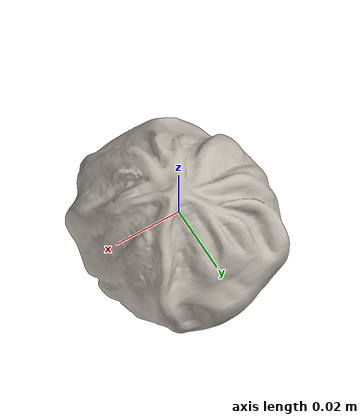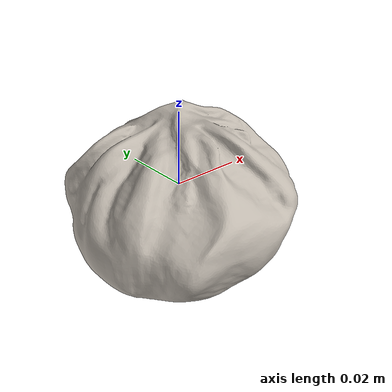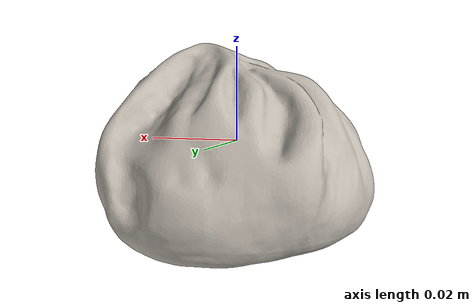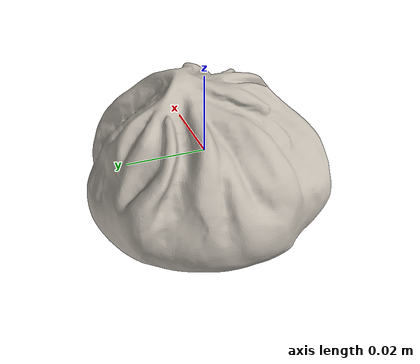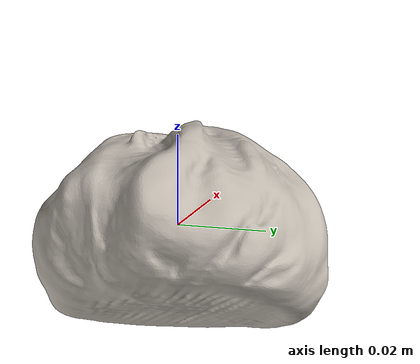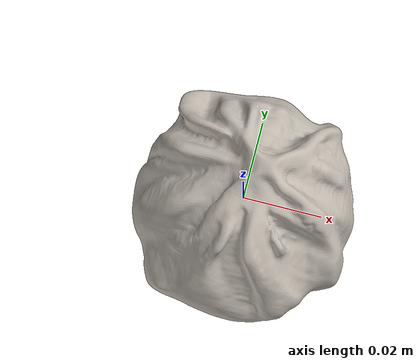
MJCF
<?xml version='1.0' encoding='utf-8'?>
<mujoco model="dumpling_11">
  <asset>
    <texture file="ceramic.png" name="tex-dumpling_11" type="2d" />
    <material name="dumpling_11" reflectance="0.5" texrepeat="1 1" texture="tex-dumpling_11" texuniform="false" />
    <mesh file="visual/model_normalized_0.obj" name="model_normalized_0_vis" scale="0.06000000000000002 0.06000000000000002 0.06000000000000002" refquat="1.0 0.0 0.0 0.0" />
    <mesh file="collision/model_normalized_collision_13.obj" name="model_normalized_collision_13._coll" scale="0.06000000000000002 0.06000000000000002 0.06000000000000002" refquat="1.0 0.0 0.0 0.0" />
    <mesh file="collision/model_normalized_collision_15.obj" name="model_normalized_collision_15._coll" scale="0.06000000000000002 0.06000000000000002 0.06000000000000002" refquat="1.0 0.0 0.0 0.0" />
    <mesh file="collision/model_normalized_collision_10.obj" name="model_normalized_collision_10._coll" scale="0.06000000000000002 0.06000000000000002 0.06000000000000002" refquat="1.0 0.0 0.0 0.0" />
    <mesh file="collision/model_normalized_collision_26.obj" name="model_normalized_collision_26._coll" scale="0.06000000000000002 0.06000000000000002 0.06000000000000002" refquat="1.0 0.0 0.0 0.0" />
    <mesh file="collision/model_normalized_collision_25.obj" name="model_normalized_collision_25._coll" scale="0.06000000000000002 0.06000000000000002 0.06000000000000002" refquat="1.0 0.0 0.0 0.0" />
    <mesh file="collision/model_normalized_collision_5.obj" name="model_normalized_collision_5._coll" scale="0.06000000000000002 0.06000000000000002 0.06000000000000002" refquat="1.0 0.0 0.0 0.0" />
    <mesh file="collision/model_normalized_collision_31.obj" name="model_normalized_collision_31._coll" scale="0.06000000000000002 0.06000000000000002 0.06000000000000002" refquat="1.0 0.0 0.0 0.0" />
    <mesh file="collision/model_normalized_collision_3.obj" name="model_normalized_collision_3._coll" scale="0.06000000000000002 0.06000000000000002 0.06000000000000002" refquat="1.0 0.0 0.0 0.0" />
    <mesh file="collision/model_normalized_collision_14.obj" name="model_normalized_collision_14._coll" scale="0.06000000000000002 0.06000000000000002 0.06000000000000002" refquat="1.0 0.0 0.0 0.0" />
    <mesh file="collision/model_normalized_collision_28.obj" name="model_normalized_collision_28._coll" scale="0.06000000000000002 0.06000000000000002 0.06000000000000002" refquat="1.0 0.0 0.0 0.0" />
    <mesh file="collision/model_normalized_collision_11.obj" name="model_normalized_collision_11._coll" scale="0.06000000000000002 0.06000000000000002 0.06000000000000002" refquat="1.0 0.0 0.0 0.0" />
    <mesh file="collision/model_normalized_collision_29.obj" name="model_normalized_collision_29._coll" scale="0.06000000000000002 0.06000000000000002 0.06000000000000002" refquat="1.0 0.0 0.0 0.0" />
    <mesh file="collision/model_normalized_collision_24.obj" name="model_normalized_collision_24._coll" scale="0.06000000000000002 0.06000000000000002 0.06000000000000002" refquat="1.0 0.0 0.0 0.0" />
    <mesh file="collision/model_normalized_collision_1.obj" name="model_normalized_collision_1._coll" scale="0.06000000000000002 0.06000000000000002 0.06000000000000002" refquat="1.0 0.0 0.0 0.0" />
    <mesh file="collision/model_normalized_collision_0.obj" name="model_normalized_collision_0._coll" scale="0.06000000000000002 0.06000000000000002 0.06000000000000002" refquat="1.0 0.0 0.0 0.0" />
    <mesh file="collision/model_normalized_collision_27.obj" name="model_normalized_collision_27._coll" scale="0.06000000000000002 0.06000000000000002 0.06000000000000002" refquat="1.0 0.0 0.0 0.0" />
    <mesh file="collision/model_normalized_collision_9.obj" name="model_normalized_collision_9._coll" scale="0.06000000000000002 0.06000000000000002 0.06000000000000002" refquat="1.0 0.0 0.0 0.0" />
    <mesh file="collision/model_normalized_collision_19.obj" name="model_normalized_collision_19._coll" scale="0.06000000000000002 0.06000000000000002 0.06000000000000002" refquat="1.0 0.0 0.0 0.0" />
    <mesh file="collision/model_normalized_collision_21.obj" name="model_normalized_collision_21._coll" scale="0.06000000000000002 0.06000000000000002 0.06000000000000002" refquat="1.0 0.0 0.0 0.0" />
    <mesh file="collision/model_normalized_collision_30.obj" name="model_normalized_collision_30._coll" scale="0.06000000000000002 0.06000000000000002 0.06000000000000002" refquat="1.0 0.0 0.0 0.0" />
    <mesh file="collision/model_normalized_collision_20.obj" name="model_normalized_collision_20._coll" scale="0.06000000000000002 0.06000000000000002 0.06000000000000002" refquat="1.0 0.0 0.0 0.0" />
    <mesh file="collision/model_normalized_collision_2.obj" name="model_normalized_collision_2._coll" scale="0.06000000000000002 0.06000000000000002 0.06000000000000002" refquat="1.0 0.0 0.0 0.0" />
    <mesh file="collision/model_normalized_collision_7.obj" name="model_normalized_collision_7._coll" scale="0.06000000000000002 0.06000000000000002 0.06000000000000002" refquat="1.0 0.0 0.0 0.0" />
    <mesh file="collision/model_normalized_collision_22.obj" name="model_normalized_collision_22._coll" scale="0.06000000000000002 0.06000000000000002 0.06000000000000002" refquat="1.0 0.0 0.0 0.0" />
    <mesh file="collision/model_normalized_collision_16.obj" name="model_normalized_collision_16._coll" scale="0.06000000000000002 0.06000000000000002 0.06000000000000002" refquat="1.0 0.0 0.0 0.0" />
    <mesh file="collision/model_normalized_collision_8.obj" name="model_normalized_collision_8._coll" scale="0.06000000000000002 0.06000000000000002 0.06000000000000002" refquat="1.0 0.0 0.0 0.0" />
    <mesh file="collision/model_normalized_collision_6.obj" name="model_normalized_collision_6._coll" scale="0.06000000000000002 0.06000000000000002 0.06000000000000002" refquat="1.0 0.0 0.0 0.0" />
    <mesh file="collision/model_normalized_collision_18.obj" name="model_normalized_collision_18._coll" scale="0.06000000000000002 0.06000000000000002 0.06000000000000002" refquat="1.0 0.0 0.0 0.0" />
    <mesh file="collision/model_normalized_collision_17.obj" name="model_normalized_collision_17._coll" scale="0.06000000000000002 0.06000000000000002 0.06000000000000002" refquat="1.0 0.0 0.0 0.0" />
    <mesh file="collision/model_normalized_collision_12.obj" name="model_normalized_collision_12._coll" scale="0.06000000000000002 0.06000000000000002 0.06000000000000002" refquat="1.0 0.0 0.0 0.0" />
    <mesh file="collision/model_normalized_collision_4.obj" name="model_normalized_collision_4._coll" scale="0.06000000000000002 0.06000000000000002 0.06000000000000002" refquat="1.0 0.0 0.0 0.0" />
    <mesh file="collision/model_normalized_collision_23.obj" name="model_normalized_collision_23._coll" scale="0.06000000000000002 0.06000000000000002 0.06000000000000002" refquat="1.0 0.0 0.0 0.0" />
    <texture type="2d" name="0d8db3aaf2e6_Dumpling__3d_asset__texture_kd" file="visual/0d8db3aaf2e6_Dumpling__3d_asset__texture_kd.png" />
    <material name="Material_0" texture="0d8db3aaf2e6_Dumpling__3d_asset__texture_kd" specular="0.5" shininess="0.5" />
  </asset>
  <default>
    <default class="region">
      <geom group="1" conaffinity="0" contype="0" rgba="0 1 0 0" />
    </default>
  </default>
  <worldbody>
    <body>
      <body name="object">
        <geom solimp="0.998 0.998 0.001" solref="0.001 1" density="100" friction="0.95 0.3 0.1" type="mesh" mesh="model_normalized_0_vis" conaffinity="0" contype="0" group="1" material="Material_0" />
        <geom solimp="0.998 0.998 0.001" solref="0.001 1" density="100" friction="0.95 0.3 0.1" type="mesh" mesh="model_normalized_collision_13._coll" group="0" rgba="0.8 0.8 0.8 0.0" />
        <geom solimp="0.998 0.998 0.001" solref="0.001 1" density="100" friction="0.95 0.3 0.1" type="mesh" mesh="model_normalized_collision_15._coll" group="0" rgba="0.8 0.8 0.8 0.0" />
        <geom solimp="0.998 0.998 0.001" solref="0.001 1" density="100" friction="0.95 0.3 0.1" type="mesh" mesh="model_normalized_collision_10._coll" group="0" rgba="0.8 0.8 0.8 0.0" />
        <geom solimp="0.998 0.998 0.001" solref="0.001 1" density="100" friction="0.95 0.3 0.1" type="mesh" mesh="model_normalized_collision_26._coll" group="0" rgba="0.8 0.8 0.8 0.0" />
        <geom solimp="0.998 0.998 0.001" solref="0.001 1" density="100" friction="0.95 0.3 0.1" type="mesh" mesh="model_normalized_collision_25._coll" group="0" rgba="0.8 0.8 0.8 0.0" />
        <geom solimp="0.998 0.998 0.001" solref="0.001 1" density="100" friction="0.95 0.3 0.1" type="mesh" mesh="model_normalized_collision_5._coll" group="0" rgba="0.8 0.8 0.8 0.0" />
        <geom solimp="0.998 0.998 0.001" solref="0.001 1" density="100" friction="0.95 0.3 0.1" type="mesh" mesh="model_normalized_collision_31._coll" group="0" rgba="0.8 0.8 0.8 0.0" />
        <geom solimp="0.998 0.998 0.001" solref="0.001 1" density="100" friction="0.95 0.3 0.1" type="mesh" mesh="model_normalized_collision_3._coll" group="0" rgba="0.8 0.8 0.8 0.0" />
        <geom solimp="0.998 0.998 0.001" solref="0.001 1" density="100" friction="0.95 0.3 0.1" type="mesh" mesh="model_normalized_collision_14._coll" group="0" rgba="0.8 0.8 0.8 0.0" />
        <geom solimp="0.998 0.998 0.001" solref="0.001 1" density="100" friction="0.95 0.3 0.1" type="mesh" mesh="model_normalized_collision_28._coll" group="0" rgba="0.8 0.8 0.8 0.0" />
        <geom solimp="0.998 0.998 0.001" solref="0.001 1" density="100" friction="0.95 0.3 0.1" type="mesh" mesh="model_normalized_collision_11._coll" group="0" rgba="0.8 0.8 0.8 0.0" />
        <geom solimp="0.998 0.998 0.001" solref="0.001 1" density="100" friction="0.95 0.3 0.1" type="mesh" mesh="model_normalized_collision_29._coll" group="0" rgba="0.8 0.8 0.8 0.0" />
        <geom solimp="0.998 0.998 0.001" solref="0.001 1" density="100" friction="0.95 0.3 0.1" type="mesh" mesh="model_normalized_collision_24._coll" group="0" rgba="0.8 0.8 0.8 0.0" />
        <geom solimp="0.998 0.998 0.001" solref="0.001 1" density="100" friction="0.95 0.3 0.1" type="mesh" mesh="model_normalized_collision_1._coll" group="0" rgba="0.8 0.8 0.8 0.0" />
        <geom solimp="0.998 0.998 0.001" solref="0.001 1" density="100" friction="0.95 0.3 0.1" type="mesh" mesh="model_normalized_collision_0._coll" group="0" rgba="0.8 0.8 0.8 0.0" />
        <geom solimp="0.998 0.998 0.001" solref="0.001 1" density="100" friction="0.95 0.3 0.1" type="mesh" mesh="model_normalized_collision_27._coll" group="0" rgba="0.8 0.8 0.8 0.0" />
        <geom solimp="0.998 0.998 0.001" solref="0.001 1" density="100" friction="0.95 0.3 0.1" type="mesh" mesh="model_normalized_collision_9._coll" group="0" rgba="0.8 0.8 0.8 0.0" />
        <geom solimp="0.998 0.998 0.001" solref="0.001 1" density="100" friction="0.95 0.3 0.1" type="mesh" mesh="model_normalized_collision_19._coll" group="0" rgba="0.8 0.8 0.8 0.0" />
        <geom solimp="0.998 0.998 0.001" solref="0.001 1" density="100" friction="0.95 0.3 0.1" type="mesh" mesh="model_normalized_collision_21._coll" group="0" rgba="0.8 0.8 0.8 0.0" />
        <geom solimp="0.998 0.998 0.001" solref="0.001 1" density="100" friction="0.95 0.3 0.1" type="mesh" mesh="model_normalized_collision_30._coll" group="0" rgba="0.8 0.8 0.8 0.0" />
        <geom solimp="0.998 0.998 0.001" solref="0.001 1" density="100" friction="0.95 0.3 0.1" type="mesh" mesh="model_normalized_collision_20._coll" group="0" rgba="0.8 0.8 0.8 0.0" />
        <geom solimp="0.998 0.998 0.001" solref="0.001 1" density="100" friction="0.95 0.3 0.1" type="mesh" mesh="model_normalized_collision_2._coll" group="0" rgba="0.8 0.8 0.8 0.0" />
        <geom solimp="0.998 0.998 0.001" solref="0.001 1" density="100" friction="0.95 0.3 0.1" type="mesh" mesh="model_normalized_collision_7._coll" group="0" rgba="0.8 0.8 0.8 0.0" />
        <geom solimp="0.998 0.998 0.001" solref="0.001 1" density="100" friction="0.95 0.3 0.1" type="mesh" mesh="model_normalized_collision_22._coll" group="0" rgba="0.8 0.8 0.8 0.0" />
        <geom solimp="0.998 0.998 0.001" solref="0.001 1" density="100" friction="0.95 0.3 0.1" type="mesh" mesh="model_normalized_collision_16._coll" group="0" rgba="0.8 0.8 0.8 0.0" />
        <geom solimp="0.998 0.998 0.001" solref="0.001 1" density="100" friction="0.95 0.3 0.1" type="mesh" mesh="model_normalized_collision_8._coll" group="0" rgba="0.8 0.8 0.8 0.0" />
        <geom solimp="0.998 0.998 0.001" solref="0.001 1" density="100" friction="0.95 0.3 0.1" type="mesh" mesh="model_normalized_collision_6._coll" group="0" rgba="0.8 0.8 0.8 0.0" />
        <geom solimp="0.998 0.998 0.001" solref="0.001 1" density="100" friction="0.95 0.3 0.1" type="mesh" mesh="model_normalized_collision_18._coll" group="0" rgba="0.8 0.8 0.8 0.0" />
        <geom solimp="0.998 0.998 0.001" solref="0.001 1" density="100" friction="0.95 0.3 0.1" type="mesh" mesh="model_normalized_collision_17._coll" group="0" rgba="0.8 0.8 0.8 0.0" />
        <geom solimp="0.998 0.998 0.001" solref="0.001 1" density="100" friction="0.95 0.3 0.1" type="mesh" mesh="model_normalized_collision_12._coll" group="0" rgba="0.8 0.8 0.8 0.0" />
        <geom solimp="0.998 0.998 0.001" solref="0.001 1" density="100" friction="0.95 0.3 0.1" type="mesh" mesh="model_normalized_collision_4._coll" group="0" rgba="0.8 0.8 0.8 0.0" />
        <geom solimp="0.998 0.998 0.001" solref="0.001 1" density="100" friction="0.95 0.3 0.1" type="mesh" mesh="model_normalized_collision_23._coll" group="0" rgba="0.8 0.8 0.8 0.0" />
        <geom class="region" name="reg_bbox" type="box" pos="0.0001932597000000003 -3.000000015074279e-10 1.3235399999996997e-05" size="0.02973871500000001 0.030454546200000016 0.020909091600000006" />
      </body>
    <site rgba="0 0 0 0" size="0.005" pos="0 0 -0.020895856" name="bottom_site" /><site rgba="0 0 0 0" size="0.005" pos="0 0 0.020922327" name="top_site" /><site rgba="0 0 0 0" size="0.005" pos="0.030454547 0.030454547 0" name="horizontal_radius_site" /></body>
  </worldbody>
</mujoco>
